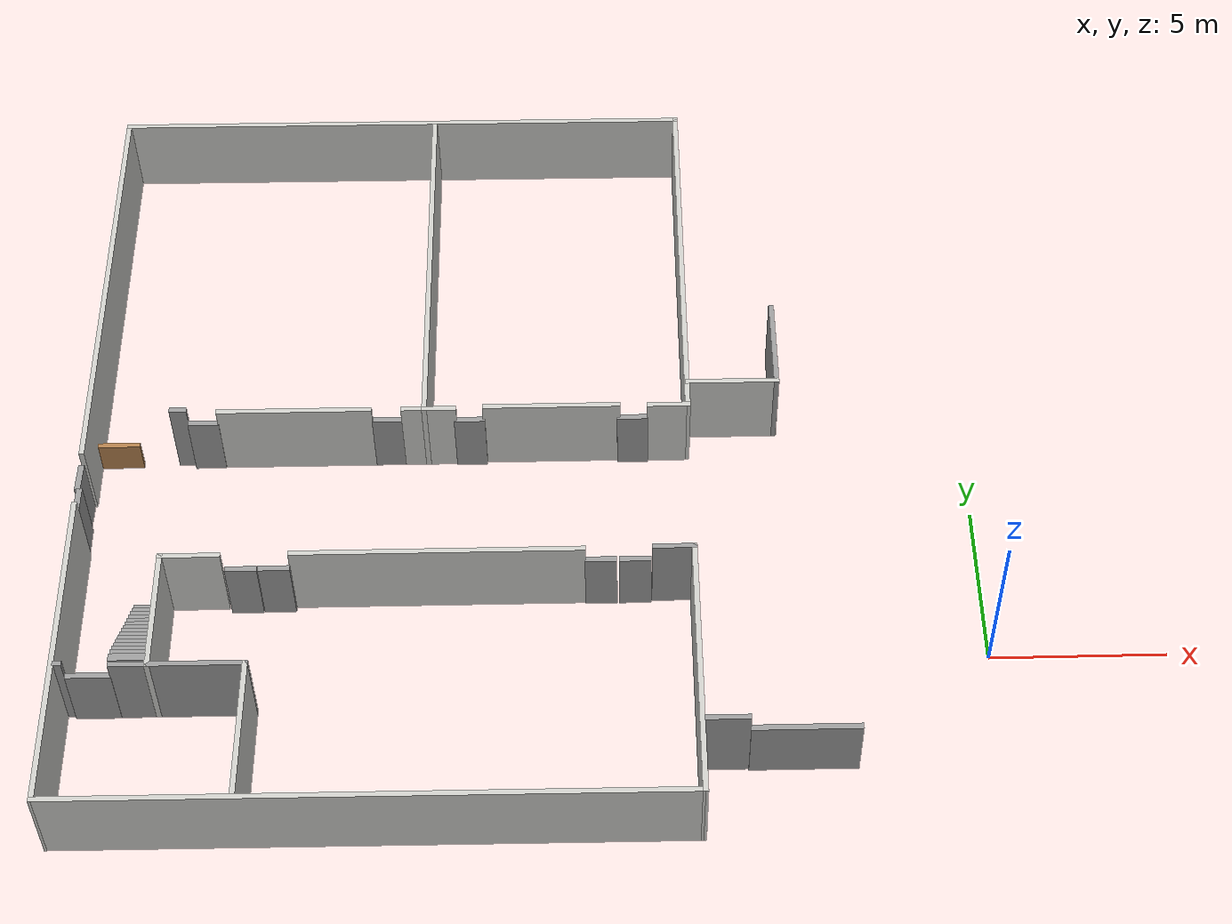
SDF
<sdf version="1.7">
 <model name="mts_dept">
  <pose>-3.28775 6.83696 0 0 -0 0</pose>
  <link name="Door_1">
   <collision name="Door_1_Collision">
    <geometry><box><size>0.9 0.17 2</size></box></geometry>
    <pose>0 0 1 0 -0 0</pose>
   </collision>
   <visual name="Door_1_Visual">
    <pose>0 0 1 0 -0 0</pose>
    <geometry><box><size>0.9 0.17 2</size></box></geometry>
    <material>
     <script><uri>file://media/materials/scripts/gazebo.material</uri><name>Gazebo/Grey</name></script>
    </material>
   </visual>
   <pose>-6.58213 -4.65147 0 0 -0 0</pose>
  </link>
  <link name="Door_13">
   <collision name="Door_13_Collision">
    <geometry><box><size>0.9 0.17 2</size></box></geometry>
    <pose>0 0 1 0 -0 0</pose>
   </collision>
   <visual name="Door_13_Visual">
    <pose>0 0 1 0 -0 0</pose>
    <geometry><box><size>0.9 0.17 2</size></box></geometry>
    <material>
     <script><uri>file://media/materials/scripts/gazebo.material</uri><name>Gazebo/Grey</name></script>
    </material>
   </visual>
   <pose>-22.3834 -2.29202 0 0 -0 -1.5708</pose>
  </link>
  <link name="Door_14">
   <collision name="Door_14_Collision">
    <geometry><box><size>0.9 0.17 2</size></box></geometry>
    <pose>0 0 1 0 -0 0</pose>
   </collision>
   <visual name="Door_14_Visual">
    <pose>0 0 1 0 -0 0</pose>
    <geometry><box><size>0.9 0.17 2</size></box></geometry>
    <material>
     <script><uri>file://media/materials/scripts/gazebo.material</uri><name>Gazebo/Grey</name></script>
    </material>
   </visual>
   <pose>-22.4286 -1.43294 0 0 0 -1.59865</pose>
  </link>
  <link name="Door_2">
   <collision name="Door_2_Collision">
    <geometry><box><size>0.9 0.17 2</size></box></geometry>
    <pose>0 0 1 0 -0 0</pose>
   </collision>
   <visual name="Door_2_Visual">
    <pose>0 0 1 0 -0 0</pose>
    <geometry><box><size>0.9 0.17 2</size></box></geometry>
    <material>
     <script><uri>file://media/materials/scripts/gazebo.material</uri><name>Gazebo/Grey</name></script>
    </material>
   </visual>
   <pose>-7.54552 -4.6498 0 0 -0 0</pose>
  </link>
  <link name="Door_20">
   <collision name="Door_20_Collision">
    <geometry><box><size>3 0.17 2</size></box></geometry>
    <pose>0 0 1 0 -0 0</pose>
   </collision>
   <visual name="Door_20_Visual">
    <pose>0 0 1 0 -0 0</pose>
    <geometry><box><size>3 0.17 2</size></box></geometry>
    <material>
     <script><uri>file://media/materials/scripts/gazebo.material</uri><name>Gazebo/Grey</name></script>
    </material>
   </visual>
   <pose>-2.13617 -10.29 0 0 -0 0</pose>
  </link>
  <link name="Door_3">
   <collision name="Door_3_Collision">
    <geometry><box><size>0.9 0.17 2</size></box></geometry>
    <pose>0 0 1 0 -0 0</pose>
   </collision>
   <visual name="Door_3_Visual">
    <pose>0 0 1 0 -0 0</pose>
    <geometry><box><size>0.9 0.17 2</size></box></geometry>
    <material>
     <script><uri>file://media/materials/scripts/gazebo.material</uri><name>Gazebo/Grey</name></script>
    </material>
   </visual>
   <pose>-16.6533 -4.77247 0 0 -0 0</pose>
  </link>
  <link name="Door_4">
   <collision name="Door_4_Collision">
    <geometry><box><size>0.9 0.17 2</size></box></geometry>
    <pose>0 0 1 0 -0 0</pose>
   </collision>
   <visual name="Door_4_Visual">
    <pose>0 0 1 0 -0 0</pose>
    <geometry><box><size>0.9 0.17 2</size></box></geometry>
    <material>
     <script><uri>file://media/materials/scripts/gazebo.material</uri><name>Gazebo/Grey</name></script>
    </material>
   </visual>
   <pose>-17.5712 -4.7776 0 0 -0 0</pose>
  </link>
  <link name="Door_5">
   <collision name="Door_5_Collision">
    <geometry><box><size>1.25 0.17 2</size></box></geometry>
    <pose>0 0 1 0 -0 0</pose>
   </collision>
   <visual name="Door_5_Visual">
    <pose>0 0 1 0 -0 0</pose>
    <geometry><box><size>1.25 0.17 2</size></box></geometry>
    <material>
     <script><uri>file://media/materials/scripts/gazebo.material</uri><name>Gazebo/Grey</name></script>
    </material>
   </visual>
   <pose>-21.413 -8.25478 0 0 -0 0</pose>
  </link>
  <link name="Door_6">
   <collision name="Door_6_Collision">
    <geometry><box><size>0.9 0.17 2</size></box></geometry>
    <pose>0 0 1 0 -0 0</pose>
   </collision>
   <visual name="Door_6_Visual">
    <pose>0 0 1 0 -0 0</pose>
    <geometry><box><size>0.9 0.17 2</size></box></geometry>
    <material>
     <script><uri>file://media/materials/scripts/gazebo.material</uri><name>Gazebo/Grey</name></script>
    </material>
   </visual>
   <pose>-6.55285 0.494639 0 0 -0 0</pose>
  </link>
  <link name="Door_7">
   <collision name="Door_7_Collision">
    <geometry><box><size>0.9 0.17 2</size></box></geometry>
    <pose>0 0 1 0 -0 0</pose>
   </collision>
   <visual name="Door_7_Visual">
    <pose>0 0 1 0 -0 0</pose>
    <geometry><box><size>0.9 0.17 2</size></box></geometry>
    <material>
     <script><uri>file://media/materials/scripts/gazebo.material</uri><name>Gazebo/Grey</name></script>
    </material>
   </visual>
   <pose>-11.3046 0.493458 0 0 -0 0</pose>
  </link>
  <link name="Door_8">
   <collision name="Door_8_Collision">
    <geometry><box><size>0.9 0.17 2</size></box></geometry>
    <pose>0 0 1 0 -0 0</pose>
   </collision>
   <visual name="Door_8_Visual">
    <pose>0 0 1 0 -0 0</pose>
    <geometry><box><size>0.9 0.17 2</size></box></geometry>
    <material>
     <script><uri>file://media/materials/scripts/gazebo.material</uri><name>Gazebo/Grey</name></script>
    </material>
   </visual>
   <pose>-13.6938 0.528828 0 0 -0 0</pose>
  </link>
  <link name="Door_9">
   <collision name="Door_9_Collision">
    <geometry><box><size>0.9 0.17 2</size></box></geometry>
    <pose>0 0 1 0 -0 0</pose>
   </collision>
   <visual name="Door_9_Visual">
    <pose>0 0 1 0 -0 0</pose>
    <geometry><box><size>0.9 0.17 2</size></box></geometry>
    <material>
     <script><uri>file://media/materials/scripts/gazebo.material</uri><name>Gazebo/Grey</name></script>
    </material>
   </visual>
   <pose>-19.0487 0.509221 0 0 -0 0</pose>
  </link>
  <link name="Stairs_0">
   <visual name="Stairs_0_Visual_0">
    <pose>-20.3275 -4.74708 0.083333 0 -0 0</pose>
    <geometry><box><size>1 0.233333 0.166667</size></box></geometry>
    <material>
     <script><uri>file://media/materials/scripts/gazebo.material</uri><name>Gazebo/Grey</name></script>
     <ambient>1 1 1 1</ambient>
    </material>
    <meta><layer>0</layer></meta>
   </visual>
   <collision name="Stairs_0_Collision_0">
    <geometry><box><size>1 0.233333 0.166667</size></box></geometry>
    <pose>-20.3275 -4.74708 0.083333 0 -0 0</pose>
   </collision>
   <visual name="Stairs_0_Visual_1">
    <pose>-20.3275 -4.98041 0.25 0 -0 0</pose>
    <geometry><box><size>1 0.233333 0.166667</size></box></geometry>
    <material>
     <script><uri>file://media/materials/scripts/gazebo.material</uri><name>Gazebo/Grey</name></script>
     <ambient>1 1 1 1</ambient>
    </material>
    <meta><layer>0</layer></meta>
   </visual>
   <collision name="Stairs_0_Collision_1">
    <geometry><box><size>1 0.233333 0.166667</size></box></geometry>
    <pose>-20.3275 -4.98041 0.25 0 -0 0</pose>
   </collision>
   <visual name="Stairs_0_Visual_2">
    <pose>-20.3275 -5.21374 0.416667 0 -0 0</pose>
    <geometry><box><size>1 0.233333 0.166667</size></box></geometry>
    <material>
     <script><uri>file://media/materials/scripts/gazebo.material</uri><name>Gazebo/Grey</name></script>
     <ambient>1 1 1 1</ambient>
    </material>
    <meta><layer>0</layer></meta>
   </visual>
   <collision name="Stairs_0_Collision_2">
    <geometry><box><size>1 0.233333 0.166667</size></box></geometry>
    <pose>-20.3275 -5.21374 0.416667 0 -0 0</pose>
   </collision>
   <visual name="Stairs_0_Visual_3">
    <pose>-20.3275 -5.44708 0.583333 0 -0 0</pose>
    <geometry><box><size>1 0.233333 0.166667</size></box></geometry>
    <material>
     <script><uri>file://media/materials/scripts/gazebo.material</uri><name>Gazebo/Grey</name></script>
     <ambient>1 1 1 1</ambient>
    </material>
    <meta><layer>0</layer></meta>
   </visual>
   <collision name="Stairs_0_Collision_3">
    <geometry><box><size>1 0.233333 0.166667</size></box></geometry>
    <pose>-20.3275 -5.44708 0.583333 0 -0 0</pose>
   </collision>
   <visual name="Stairs_0_Visual_4">
    <pose>-20.3275 -5.68041 0.75 0 -0 0</pose>
    <geometry><box><size>1 0.233333 0.166667</size></box></geometry>
    <material>
     <script><uri>file://media/materials/scripts/gazebo.material</uri><name>Gazebo/Grey</name></script>
     <ambient>1 1 1 1</ambient>
    </material>
    <meta><layer>0</layer></meta>
   </visual>
   <collision name="Stairs_0_Collision_4">
    <geometry><box><size>1 0.233333 0.166667</size></box></geometry>
    <pose>-20.3275 -5.68041 0.75 0 -0 0</pose>
   </collision>
   <visual name="Stairs_0_Visual_5">
    <pose>-20.3275 -5.91374 0.916667 0 -0 0</pose>
    <geometry><box><size>1 0.233333 0.166667</size></box></geometry>
    <material>
     <script><uri>file://media/materials/scripts/gazebo.material</uri><name>Gazebo/Grey</name></script>
     <ambient>1 1 1 1</ambient>
    </material>
    <meta><layer>0</layer></meta>
   </visual>
   <collision name="Stairs_0_Collision_5">
    <geometry><box><size>1 0.233333 0.166667</size></box></geometry>
    <pose>-20.3275 -5.91374 0.916667 0 -0 0</pose>
   </collision>
   <visual name="Stairs_0_Visual_6">
    <pose>-20.3275 -6.14708 1.08333 0 -0 0</pose>
    <geometry><box><size>1 0.233333 0.166667</size></box></geometry>
    <material>
     <script><uri>file://media/materials/scripts/gazebo.material</uri><name>Gazebo/Grey</name></script>
     <ambient>1 1 1 1</ambient>
    </material>
    <meta><layer>0</layer></meta>
   </visual>
   <collision name="Stairs_0_Collision_6">
    <geometry><box><size>1 0.233333 0.166667</size></box></geometry>
    <pose>-20.3275 -6.14708 1.08333 0 -0 0</pose>
   </collision>
   <visual name="Stairs_0_Visual_7">
    <pose>-20.3275 -6.38041 1.25 0 -0 0</pose>
    <geometry><box><size>1 0.233333 0.166667</size></box></geometry>
    <material>
     <script><uri>file://media/materials/scripts/gazebo.material</uri><name>Gazebo/Grey</name></script>
     <ambient>1 1 1 1</ambient>
    </material>
    <meta><layer>0</layer></meta>
   </visual>
   <collision name="Stairs_0_Collision_7">
    <geometry><box><size>1 0.233333 0.166667</size></box></geometry>
    <pose>-20.3275 -6.38041 1.25 0 -0 0</pose>
   </collision>
   <visual name="Stairs_0_Visual_8">
    <pose>-20.3275 -6.61374 1.41667 0 -0 0</pose>
    <geometry><box><size>1 0.233333 0.166667</size></box></geometry>
    <material>
     <script><uri>file://media/materials/scripts/gazebo.material</uri><name>Gazebo/Grey</name></script>
     <ambient>1 1 1 1</ambient>
    </material>
    <meta><layer>0</layer></meta>
   </visual>
   <collision name="Stairs_0_Collision_8">
    <geometry><box><size>1 0.233333 0.166667</size></box></geometry>
    <pose>-20.3275 -6.61374 1.41667 0 -0 0</pose>
   </collision>
   <visual name="Stairs_0_Visual_9">
    <pose>-20.3275 -6.84708 1.58333 0 -0 0</pose>
    <geometry><box><size>1 0.233333 0.166667</size></box></geometry>
    <material>
     <script><uri>file://media/materials/scripts/gazebo.material</uri><name>Gazebo/Grey</name></script>
     <ambient>1 1 1 1</ambient>
    </material>
    <meta><layer>0</layer></meta>
   </visual>
   <collision name="Stairs_0_Collision_9">
    <geometry><box><size>1 0.233333 0.166667</size></box></geometry>
    <pose>-20.3275 -6.84708 1.58333 0 -0 0</pose>
   </collision>
   <visual name="Stairs_0_Visual_10">
    <pose>-20.3275 -7.08041 1.75 0 -0 0</pose>
    <geometry><box><size>1 0.233333 0.166667</size></box></geometry>
    <material>
     <script><uri>file://media/materials/scripts/gazebo.material</uri><name>Gazebo/Grey</name></script>
     <ambient>1 1 1 1</ambient>
    </material>
    <meta><layer>0</layer></meta>
   </visual>
   <collision name="Stairs_0_Collision_10">
    <geometry><box><size>1 0.233333 0.166667</size></box></geometry>
    <pose>-20.3275 -7.08041 1.75 0 -0 0</pose>
   </collision>
   <visual name="Stairs_0_Visual_11">
    <pose>-20.3275 -7.31374 1.91667 0 -0 0</pose>
    <geometry><box><size>1 0.233333 0.166667</size></box></geometry>
    <material>
     <script><uri>file://media/materials/scripts/gazebo.material</uri><name>Gazebo/Grey</name></script>
     <ambient>1 1 1 1</ambient>
    </material>
    <meta><layer>0</layer></meta>
   </visual>
   <collision name="Stairs_0_Collision_11">
    <geometry><box><size>1 0.233333 0.166667</size></box></geometry>
    <pose>-20.3275 -7.31374 1.91667 0 -0 0</pose>
   </collision>
   <visual name="Stairs_0_Visual_12">
    <pose>-20.3275 -7.54708 2.08333 0 -0 0</pose>
    <geometry><box><size>1 0.233333 0.166667</size></box></geometry>
    <material>
     <script><uri>file://media/materials/scripts/gazebo.material</uri><name>Gazebo/Grey</name></script>
     <ambient>1 1 1 1</ambient>
    </material>
    <meta><layer>0</layer></meta>
   </visual>
   <collision name="Stairs_0_Collision_12">
    <geometry><box><size>1 0.233333 0.166667</size></box></geometry>
    <pose>-20.3275 -7.54708 2.08333 0 -0 0</pose>
   </collision>
   <visual name="Stairs_0_Visual_13">
    <pose>-20.3275 -7.78041 2.25 0 -0 0</pose>
    <geometry><box><size>1 0.233333 0.166667</size></box></geometry>
    <material>
     <script><uri>file://media/materials/scripts/gazebo.material</uri><name>Gazebo/Grey</name></script>
     <ambient>1 1 1 1</ambient>
    </material>
    <meta><layer>0</layer></meta>
   </visual>
   <collision name="Stairs_0_Collision_13">
    <geometry><box><size>1 0.233333 0.166667</size></box></geometry>
    <pose>-20.3275 -7.78041 2.25 0 -0 0</pose>
   </collision>
   <visual name="Stairs_0_Visual_14">
    <pose>-20.3275 -8.01374 2.41667 0 -0 0</pose>
    <geometry><box><size>1 0.233333 0.166667</size></box></geometry>
    <material>
     <script><uri>file://media/materials/scripts/gazebo.material</uri><name>Gazebo/Grey</name></script>
     <ambient>1 1 1 1</ambient>
    </material>
    <meta><layer>0</layer></meta>
   </visual>
   <collision name="Stairs_0_Collision_14">
    <geometry><box><size>1 0.233333 0.166667</size></box></geometry>
    <pose>-20.3275 -8.01374 2.41667 0 -0 0</pose>
   </collision>
  </link>
  <link name="Wall_104">
   <collision name="Wall_104_Collision">
    <geometry><box><size>13.5 0.15 2.5</size></box></geometry>
    <pose>0 0 1.25 0 -0 0</pose>
   </collision>
   <visual name="Wall_104_Visual">
    <pose>0 0 1.25 0 -0 0</pose>
    <geometry><box><size>13.5 0.15 2.5</size></box></geometry>
    <material>
     <script><uri>file://media/materials/scripts/gazebo.material</uri><name>Gazebo/CeilingTiled</name></script>
     <ambient>1 1 1 1</ambient>
    </material>
    <meta><layer>0</layer></meta>
   </visual>
   <pose>-22.3402 5.7797 0 0 -0 -1.5708</pose>
  </link>
  <link name="Wall_109">
   <collision name="Wall_109_Collision">
    <geometry><box><size>9.75 0.15 2.5</size></box></geometry>
    <pose>0 0 1.25 0 -0 0</pose>
   </collision>
   <visual name="Wall_109_Visual">
    <pose>0 0 1.25 0 -0 0</pose>
    <geometry><box><size>9.75 0.15 2.5</size></box></geometry>
    <material>
     <script><uri>file://media/materials/scripts/gazebo.material</uri><name>Gazebo/CeilingTiled</name></script>
     <ambient>1 1 1 1</ambient>
    </material>
    <meta><layer>0</layer></meta>
   </visual>
   <pose>-22.3402 -7.5953 0 0 -0 1.5708</pose>
  </link>
  <link name="Wall_124">
   <collision name="Wall_124_Collision">
    <geometry><box><size>3.75 0.15 2.5</size></box></geometry>
    <pose>0 0 1.25 0 -0 0</pose>
   </collision>
   <visual name="Wall_124_Visual">
    <pose>0 0 1.25 0 -0 0</pose>
    <geometry><box><size>3.75 0.15 2.5</size></box></geometry>
    <material>
     <script><uri>file://media/materials/scripts/gazebo.material</uri><name>Gazebo/CeilingTiled</name></script>
     <ambient>1 1 1 1</ambient>
    </material>
    <meta><layer>0</layer></meta>
   </visual>
   <pose>-19.7688 -6.45147 0 0 -0 -1.5708</pose>
  </link>
  <link name="Wall_141">
   <collision name="Wall_141_Collision">
    <geometry><box><size>3 0.15 2.5</size></box></geometry>
    <pose>0 0 1.25 0 -0 0</pose>
   </collision>
   <visual name="Wall_141_Visual">
    <pose>0 0 1.25 0 -0 0</pose>
    <geometry><box><size>3 0.15 2.5</size></box></geometry>
    <material>
     <script><uri>file://media/materials/scripts/gazebo.material</uri><name>Gazebo/Grey</name></script>
     <ambient>1 1 1 1</ambient>
    </material>
    <meta><layer>0</layer></meta>
   </visual>
   <pose>-2.31448 2.81677 0 0 -0 1.5708</pose>
  </link>
  <link name="Wall_143">
   <collision name="Wall_143_Collision">
    <geometry><box><size>2.75 0.15 2.5</size></box></geometry>
    <pose>0 0 1.25 0 -0 0</pose>
   </collision>
   <visual name="Wall_143_Visual">
    <pose>0 0 1.25 0 -0 0</pose>
    <geometry><box><size>2.75 0.15 2.5</size></box></geometry>
    <material>
     <script><uri>file://media/materials/scripts/gazebo.material</uri><name>Gazebo/CeilingTiled</name></script>
     <ambient>1 1 1 1</ambient>
    </material>
    <meta><layer>0</layer></meta>
   </visual>
   <pose>-3.61449 1.39177 0 0 -0 0</pose>
  </link>
  <link name="Wall_149">
   <collision name="Wall_149_Collision">
    <geometry><box><size>1.25 0.15 2.5</size></box></geometry>
    <pose>0 0 1.25 0 -0 0</pose>
   </collision>
   <visual name="Wall_149_Visual">
    <pose>0 0 1.25 0 -0 0</pose>
    <geometry><box><size>1.25 0.15 2.5</size></box></geometry>
    <material>
     <script><uri>file://media/materials/scripts/gazebo.material</uri><name>Gazebo/Grey</name></script>
     <ambient>1 1 1 1</ambient>
    </material>
    <meta><layer>0</layer></meta>
   </visual>
   <pose>-4.26152 -10.26 0 0 -0 3.14159</pose>
  </link>
  <link name="Wall_151">
   <collision name="Wall_151_Collision">
    <geometry><box><size>12 0.15 2.5</size></box></geometry>
    <pose>0 0 1.25 0 -0 0</pose>
   </collision>
   <visual name="Wall_151_Visual">
    <pose>0 0 1.25 0 -0 0</pose>
    <geometry><box><size>12 0.15 2.5</size></box></geometry>
    <material>
     <script><uri>file://media/materials/scripts/gazebo.material</uri><name>Gazebo/CeilingTiled</name></script>
     <ambient>1 1 1 1</ambient>
    </material>
    <meta><layer>0</layer></meta>
   </visual>
   <pose>-12.6013 6.44232 0 0 -0 1.5708</pose>
  </link>
  <link name="Wall_153">
   <collision name="Wall_153_Collision">
    <geometry><box><size>4 0.15 2.5</size></box></geometry>
    <pose>0 0 1.25 0 -0 0</pose>
   </collision>
   <visual name="Wall_153_Visual">
    <pose>0 0 1.25 0 -0 0</pose>
    <geometry><box><size>4 0.15 2.5</size></box></geometry>
    <material>
     <script><uri>file://media/materials/scripts/gazebo.material</uri><name>Gazebo/CeilingTiled</name></script>
     <ambient>1 1 1 1</ambient>
    </material>
    <meta><layer>0</layer></meta>
   </visual>
   <pose>-8.91338 0.557706 0 0 -0 3.14159</pose>
  </link>
  <link name="Wall_155">
   <collision name="Wall_155_Collision">
    <geometry><box><size>1 0.15 2.5</size></box></geometry>
    <pose>0 0 1.25 0 -0 0</pose>
   </collision>
   <visual name="Wall_155_Visual">
    <pose>0 0 1.25 0 -0 0</pose>
    <geometry><box><size>1 0.15 2.5</size></box></geometry>
    <material>
     <script><uri>file://media/materials/scripts/gazebo.material</uri><name>Gazebo/CeilingTiled</name></script>
     <ambient>1 1 1 1</ambient>
    </material>
    <meta><layer>0</layer></meta>
   </visual>
   <pose>-12.1763 0.517323 0 0 -0 0</pose>
  </link>
  <link name="Wall_157">
   <collision name="Wall_157_Collision">
    <geometry><box><size>4.5 0.15 2.5</size></box></geometry>
    <pose>0 0 1.25 0 -0 0</pose>
   </collision>
   <visual name="Wall_157_Visual">
    <pose>0 0 1.25 0 -0 0</pose>
    <geometry><box><size>4.5 0.15 2.5</size></box></geometry>
    <material>
     <script><uri>file://media/materials/scripts/gazebo.material</uri><name>Gazebo/CeilingTiled</name></script>
     <ambient>1 1 1 1</ambient>
    </material>
    <meta><layer>0</layer></meta>
   </visual>
   <pose>-16.3742 0.519684 0 0 -0 0</pose>
  </link>
  <link name="Wall_160">
   <collision name="Wall_160_Collision">
    <geometry><box><size>0.75 0.15 2.5</size></box></geometry>
    <pose>0 0 1.25 0 -0 0</pose>
   </collision>
   <visual name="Wall_160_Visual">
    <pose>0 0 1.25 0 -0 0</pose>
    <geometry><box><size>0.75 0.15 2.5</size></box></geometry>
    <material>
     <script><uri>file://media/materials/scripts/gazebo.material</uri><name>Gazebo/CeilingTiled</name></script>
     <ambient>1 1 1 1</ambient>
    </material>
    <meta><layer>0</layer></meta>
   </visual>
   <pose>-12.9013 0.517323 0 0 -0 3.14159</pose>
  </link>
  <link name="Wall_166">
   <collision name="Wall_166_Collision">
    <geometry><box><size>0.5 0.15 2.5</size></box></geometry>
    <pose>0 0 1.25 0 -0 0</pose>
   </collision>
   <visual name="Wall_166_Visual">
    <pose>0 0 1.25 0 -0 0</pose>
    <geometry><box><size>0.5 0.15 2.5</size></box></geometry>
    <material>
     <script><uri>file://media/materials/scripts/gazebo.material</uri><name>Gazebo/Grey</name></script>
     <ambient>1 1 1 1</ambient>
    </material>
    <meta><layer>0</layer></meta>
   </visual>
   <pose>-19.7405 0.612956 0 0 -0 3.14159</pose>
  </link>
  <link name="Wall_3">
   <collision name="Wall_3_Collision">
    <geometry><box><size>17.5521 0.15 2.5</size></box></geometry>
    <pose>0 0 1.25 0 -0 0</pose>
   </collision>
   <visual name="Wall_3_Visual">
    <pose>0 0 1.25 0 -0 0</pose>
    <geometry><box><size>17.5521 0.15 2.5</size></box></geometry>
    <material>
     <script><uri>file://media/materials/scripts/gazebo.material</uri><name>Gazebo/CeilingTiled</name></script>
     <ambient>1 1 1 1</ambient>
    </material>
    <meta><layer>0</layer></meta>
   </visual>
   <pose>-13.6392 -12.4213 0 0 -0 -0.002988</pose>
  </link>
  <link name="Wall_33">
   <collision name="Wall_33_Collision">
    <geometry><box><size>17.5521 0.15 2.5</size></box></geometry>
    <pose>0 0 1.25 0 -0 0</pose>
   </collision>
   <visual name="Wall_33_Visual">
    <pose>0 0 1.25 0 -0 0</pose>
    <geometry><box><size>17.5521 0.15 2.5</size></box></geometry>
    <material>
     <script><uri>file://media/materials/scripts/gazebo.material</uri><name>Gazebo/CeilingTiled</name></script>
     <ambient>1 1 1 1</ambient>
    </material>
    <meta><layer>0</layer></meta>
   </visual>
   <pose>-13.6392 12.4287 0 0 -0 -0.002988</pose>
  </link>
  <link name="Wall_53">
   <collision name="Wall_53_Collision">
    <geometry><box><size>8 0.15 2.5</size></box></geometry>
    <pose>0 0 1.25 0 -0 0</pose>
   </collision>
   <visual name="Wall_53_Visual">
    <pose>0 0 1.25 0 -0 0</pose>
    <geometry><box><size>8 0.15 2.5</size></box></geometry>
    <material>
     <script><uri>file://media/materials/scripts/gazebo.material</uri><name>Gazebo/CeilingTiled</name></script>
     <ambient>1 1 1 1</ambient>
    </material>
    <meta><layer>0</layer></meta>
   </visual>
   <pose>-4.93823 -8.52229 0 0 -0 1.5708</pose>
  </link>
  <link name="Wall_57">
   <collision name="Wall_57_Collision">
    <geometry><box><size>12.0205 0.15 2.5</size></box></geometry>
    <pose>0 0 1.25 0 -0 0</pose>
   </collision>
   <visual name="Wall_57_Visual">
    <pose>0 0 1.25 0 -0 0</pose>
    <geometry><box><size>12.0205 0.15 2.5</size></box></geometry>
    <material>
     <script><uri>file://media/materials/scripts/gazebo.material</uri><name>Gazebo/CeilingTiled</name></script>
     <ambient>1 1 1 1</ambient>
    </material>
    <meta><layer>0</layer></meta>
   </visual>
   <pose>-4.9417 6.46748 0 0 -0 1.57021</pose>
  </link>
  <link name="Wall_63">
   <collision name="Wall_63_Collision">
    <geometry><box><size>3.75 0.15 2.5</size></box></geometry>
    <pose>0 0 1.25 0 -0 0</pose>
   </collision>
   <visual name="Wall_63_Visual">
    <pose>0 0 1.25 0 -0 0</pose>
    <geometry><box><size>3.75 0.15 2.5</size></box></geometry>
    <material>
     <script><uri>file://media/materials/scripts/gazebo.material</uri><name>Gazebo/Grey</name></script>
     <ambient>1 1 1 1</ambient>
    </material>
    <meta><layer>0</layer></meta>
   </visual>
   <pose>-18.9346 -8.25147 0 0 -0 0</pose>
  </link>
  <link name="Wall_64">
   <collision name="Wall_64_Collision">
    <geometry><box><size>4.25014 0.15 2.5</size></box></geometry>
    <pose>0 0 1.25 0 -0 0</pose>
   </collision>
   <visual name="Wall_64_Visual">
    <pose>0 0 1.25 0 -0 0</pose>
    <geometry><box><size>4.25014 0.15 2.5</size></box></geometry>
    <material>
     <script><uri>file://media/materials/scripts/gazebo.material</uri><name>Gazebo/CeilingTiled</name></script>
     <ambient>1 1 1 1</ambient>
    </material>
    <meta><layer>0</layer></meta>
   </visual>
   <pose>-17.1517 -10.3015 0 0 -0 -1.57913</pose>
  </link>
  <link name="Wall_66">
   <collision name="Wall_66_Collision">
    <geometry><box><size>1.25 0.15 2.5</size></box></geometry>
    <pose>0 0 1.25 0 -0 0</pose>
   </collision>
   <visual name="Wall_66_Visual">
    <pose>0 0 1.25 0 -0 0</pose>
    <geometry><box><size>1.25 0.15 2.5</size></box></geometry>
    <material>
     <script><uri>file://media/materials/scripts/gazebo.material</uri><name>Gazebo/Grey</name></script>
     <ambient>1 1 1 1</ambient>
    </material>
    <meta><layer>0</layer></meta>
   </visual>
   <pose>-5.48823 -4.59729 0 0 -0 3.14159</pose>
  </link>
  <link name="Wall_69">
   <collision name="Wall_69_Collision">
    <geometry><box><size>8.25 0.15 2.5</size></box></geometry>
    <pose>0 0 1.25 0 -0 0</pose>
   </collision>
   <visual name="Wall_69_Visual">
    <pose>0 0 1.25 0 -0 0</pose>
    <geometry><box><size>8.25 0.15 2.5</size></box></geometry>
    <material>
     <script><uri>file://media/materials/scripts/gazebo.material</uri><name>Gazebo/CeilingTiled</name></script>
     <ambient>1 1 1 1</ambient>
    </material>
    <meta><layer>0</layer></meta>
   </visual>
   <pose>-12.0952 -4.63077 0 0 -0 3.14159</pose>
  </link>
  <link name="Wall_72">
   <collision name="Wall_72_Collision">
    <geometry><box><size>1.75 0.15 2.5</size></box></geometry>
    <pose>0 0 1.25 0 -0 0</pose>
   </collision>
   <visual name="Wall_72_Visual">
    <pose>0 0 1.25 0 -0 0</pose>
    <geometry><box><size>1.75 0.15 2.5</size></box></geometry>
    <material>
     <script><uri>file://media/materials/scripts/gazebo.material</uri><name>Gazebo/CeilingTiled</name></script>
     <ambient>1 1 1 1</ambient>
    </material>
    <meta><layer>0</layer></meta>
   </visual>
   <pose>-18.9688 -4.65147 0 0 -0 0</pose>
  </link>
  <link name="Wall_74">
   <collision name="Wall_74_Collision">
    <geometry><box><size>0.25 0.15 2.5</size></box></geometry>
    <pose>0 0 1.25 0 -0 0</pose>
   </collision>
   <visual name="Wall_74_Visual">
    <pose>0 0 1.25 0 -0 0</pose>
    <geometry><box><size>0.25 0.15 2.5</size></box></geometry>
    <material>
     <script><uri>file://media/materials/scripts/gazebo.material</uri><name>Gazebo/Grey</name></script>
     <ambient>1 1 1 1</ambient>
    </material>
    <meta><layer>0</layer></meta>
   </visual>
   <pose>-22.1809 -8.1864 0 0 -0 3.14159</pose>
  </link>
  <link name="Wall_95">
   <collision name="Wall_95_Collision">
    <geometry><box><size>1.4 0.15 1</size></box></geometry>
    <pose>0 0 0.5 0 -0 0</pose>
   </collision>
   <visual name="Wall_95_Visual">
    <pose>0 0 0.5 0 -0 0</pose>
    <geometry><box><size>1.4 0.15 1</size></box></geometry>
    <material>
     <script><uri>file://media/materials/scripts/gazebo.material</uri><name>Gazebo/Wood</name></script>
     <ambient>1 1 1 1</ambient>
    </material>
    <meta><layer>0</layer></meta>
   </visual>
   <pose>-21.7353 0.54704 0 0 -0 0</pose>
  </link>
  <link name="Wall_98">
   <collision name="Wall_98_Collision">
    <geometry><box><size>1.25 0.15 2.5</size></box></geometry>
    <pose>0 0 1.25 0 -0 0</pose>
   </collision>
   <visual name="Wall_98_Visual">
    <pose>0 0 1.25 0 -0 0</pose>
    <geometry><box><size>1.25 0.15 2.5</size></box></geometry>
    <material>
     <script><uri>file://media/materials/scripts/gazebo.material</uri><name>Gazebo/CeilingTiled</name></script>
     <ambient>1 1 1 1</ambient>
    </material>
    <meta><layer>0</layer></meta>
   </visual>
   <pose>-5.49517 0.532252 0 0 -0 3.14159</pose>
  </link>
  <static>1</static>
 </model>
</sdf>
